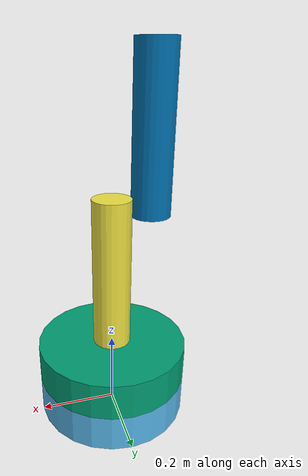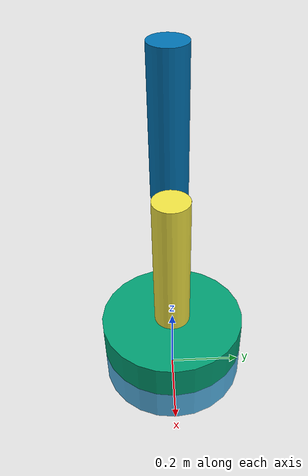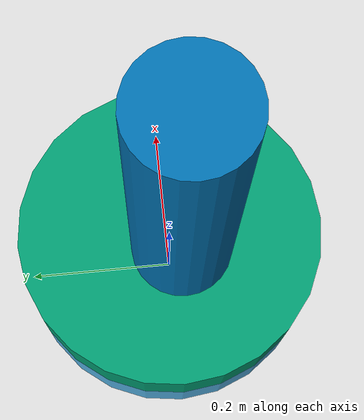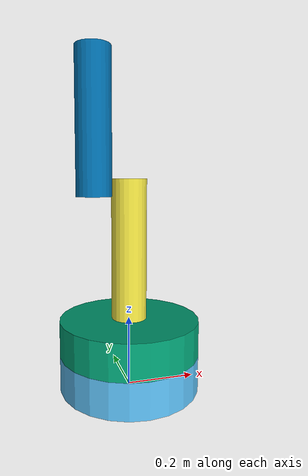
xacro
<?xml version="1.0"?>
<robot name="exabot" xmlns:xacro="http://ros.org/wiki/xacro">

  <!-- start: including -->
  <xacro:include filename="$(find examples)/urdf/macros/cylinder_inertial.xacro" />
  <xacro:include filename="$(find examples)/urdf/macros/cylinder_link_joint.xacro" />
  <!-- end: including -->

  <!-- start: parameter definition -->
  <!-- general -->
  <xacro:property name="deg_to_rad" value="0.01745329251994329577" />
  <!-- robot specific -->
  <xacro:property name="stand_height" value="0.1" />
  <xacro:property name="stand_radius" value="0.2" />
  <xacro:property name="stand_mass" value="100.0" />

  <xacro:property name="base_height" value="0.1" />
  <xacro:property name="base_radius" value="0.2" />
  <xacro:property name="base_mass" value="3.0" />

  <xacro:property name="shoulder_height" value="0.4" />
  <xacro:property name="shoulder_radius" value="0.05" />
  <xacro:property name="shoulder_mass" value="1.0" />

  <xacro:property name="upper_arm_height" value="0.4" />
  <xacro:property name="upper_arm_radius" value="0.05" />
  <xacro:property name="upper_arm_mass" value="1.0" />
  <!-- end: parameter definition -->

  <!-- start: world link -->
  <link name="world" />
  <!-- end: world link -->

  <!-- start: stand link/joint -->
  <xacro:cylinder_link_joint
      name="stand"
      parent="world"
      type="fixed"
      radius="${stand_radius}"
      height="${stand_height}"
      mass="${stand_mass}">
    <origin xyz="0 0 0" rpy="0 0 0"/>
    <joint_elements>
      <origin xyz="0 0 ${stand_height/2}" rpy="0 0 0"/>
    </joint_elements>
  </xacro:cylinder_link_joint>
  <!-- end: stand link/joint -->

  <!-- start: base link/joint -->
  <xacro:cylinder_link_joint
      name="base"
      parent="stand"
      type="fixed"
      radius="${base_radius}"
      height="${base_height}"
      mass="${base_mass}">
    <origin xyz="0 0 0" rpy="0 0 0"/>
    <joint_elements>
      <origin xyz="0 0 ${base_height/2+stand_height/2}" rpy="0 0 0"/>
    </joint_elements>
  </xacro:cylinder_link_joint>
  <!-- end: base link/joint -->

  <!-- start: shoulder link/joint -->
  <xacro:cylinder_link_joint
      name="shoulder"
      parent="base"
      type="revolute"
      radius="${shoulder_radius}"
      height="${shoulder_height}"
      mass="${shoulder_mass}">
    <origin xyz="0 0 0" rpy="0 0 0"/>
    <joint_elements>
      <origin xyz="0 0 ${shoulder_height/2+base_height/2}" rpy="0 0 0"/>
      <axis xyz="0 0 1" />
      <limit effort="30" velocity="1.0" lower="${-pi}" upper="${pi}" />
    </joint_elements>
  </xacro:cylinder_link_joint>
  <!-- end: shoulder link/joint -->

  <!-- start: upper arm link/joint -->
  <xacro:cylinder_link_joint
      name="upper_arm"
      parent="shoulder"
      type="revolute"
      radius="${upper_arm_radius}"
      height="${upper_arm_height}"
      mass="${upper_arm_mass}">
    <origin xyz="0 0 ${upper_arm_height/2}" rpy="0 0 0"/>
    <joint_elements>
      <origin xyz="${-2*upper_arm_radius} 0 ${-upper_arm_radius+shoulder_height/2}" rpy="0 0 0"/>
      <axis xyz="1 0 0" />
      <limit effort="30" velocity="1.0" lower="${-pi/2}" upper="${pi/2}" />
    </joint_elements>
  </xacro:cylinder_link_joint>
  <!-- end: upper arm link/joint -->

</robot>

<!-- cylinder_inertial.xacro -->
<robot xmlns:xacro="http://ros.org/wiki/xacro">
  <!-- Defines inertial block for cylinder geometry with radius 'radius', length 'length' and mass 'mass'. Please remember to set an origin element when calling this macro. -->
  <!-- start: xacro cylinder inertial -->
  <xacro:macro name="cylinder_inertial" params="radius length mass *origin">
    <inertial>
      <mass value="${mass}" />
      <xacro:insert_block name="origin" />
      <inertia ixx="${mass/12 * (3 * radius * radius + length * length)}" ixy="0.0" ixz="0.0"
               iyy="${mass/12 * (3 * radius * radius + length * length)}" iyz="0.0"
               izz="${mass/2 * radius * radius}" />
    </inertial>
  </xacro:macro>
  <!-- end: xacro cylinder inertial -->
</robot>

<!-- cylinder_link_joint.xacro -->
<robot xmlns:xacro="http://ros.org/wiki/xacro">

  <!-- start: including -->
  <xacro:include filename="$(find examples)/urdf/macros/cylinder_inertial.xacro" />
  <!-- end: including -->

  <!-- start: cylinder link joint -->
  <xacro:macro
      name="cylinder_link_joint"
      params="name
	      parent
	      type
	      radius
	      height
	      mass
	      *link_origin
	      **joint_elements">

    <link name="${name}_link">
      <visual>
	<xacro:insert_block name="link_origin" />
	<geometry>
	  <cylinder radius="${radius}" length="${height}"/>
	</geometry>
      </visual>
      <collision>
	<xacro:insert_block name="link_origin" />
	<geometry>
	  <cylinder radius="${radius}" length="${height}"/>
	</geometry>
      </collision>
      <xacro:cylinder_inertial radius="${radius}" length="${height}" mass="${mass}">
	<origin xyz="0 0 0" rpy="0 0 0" />
      </xacro:cylinder_inertial>
    </link>

    <joint name="${name}_joint" type="${type}">
      <xacro:if value="${parent == 'world'}">
	<parent link="${parent}" />
      </xacro:if>
      <xacro:unless value="${parent == 'world'}">
	<parent link="${parent}_link" />
      </xacro:unless>
      <child link = "${name}_link" />
      <xacro:insert_block name="joint_elements" />
    </joint>
  </xacro:macro>
  <!-- end: cylinder link joint -->

</robot>
